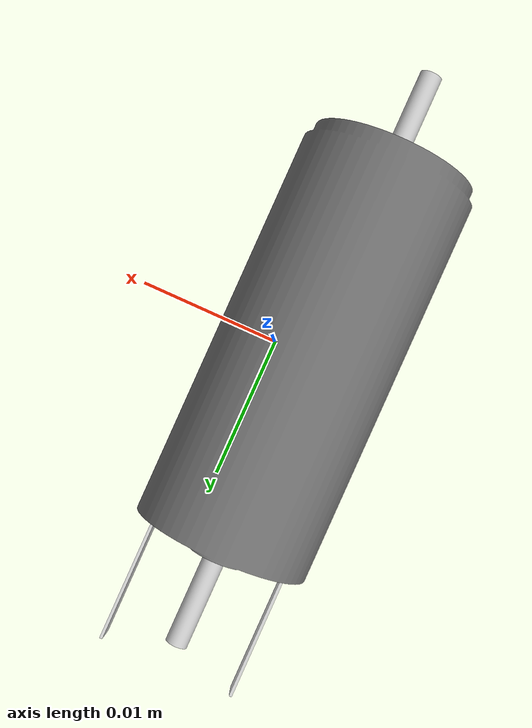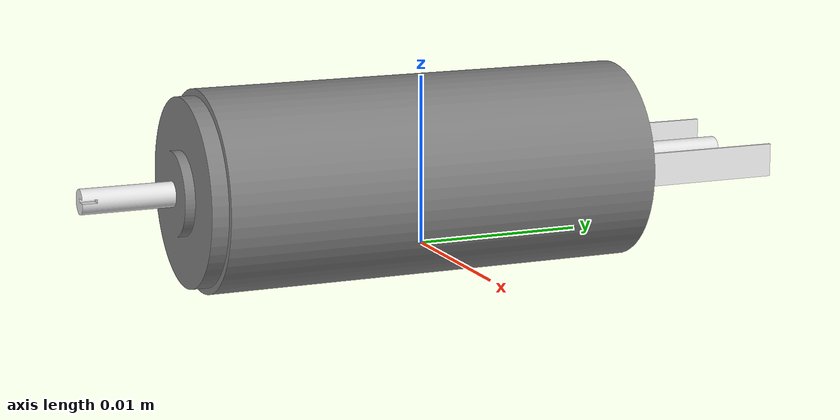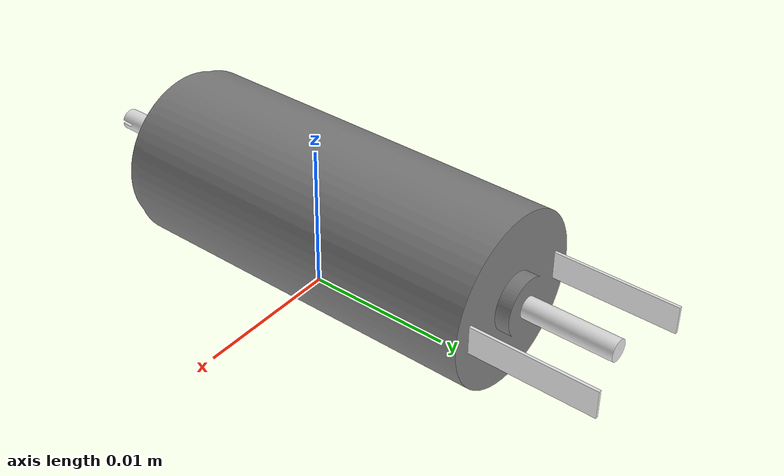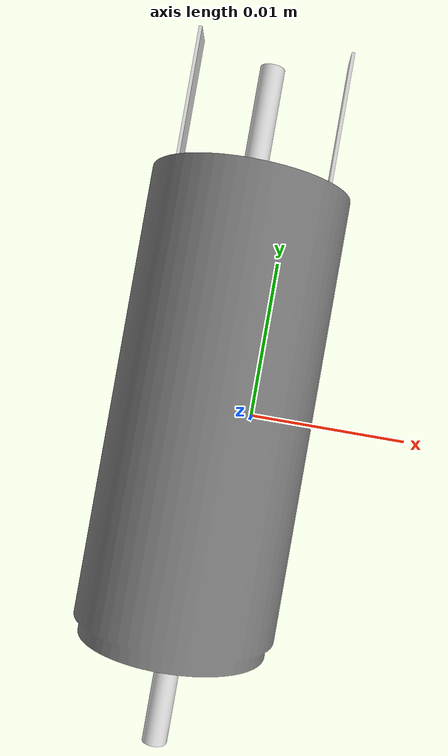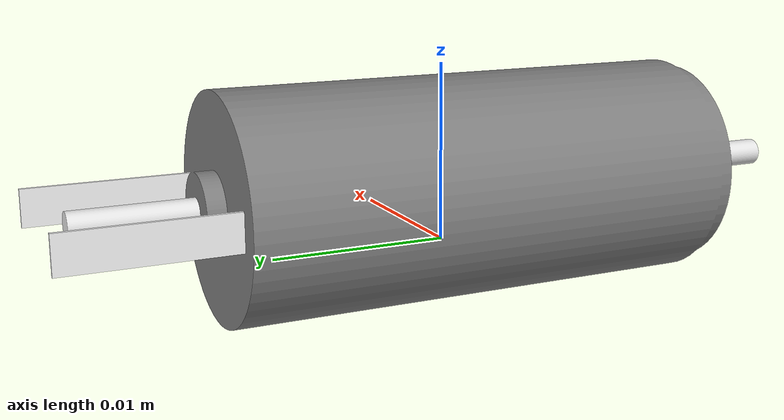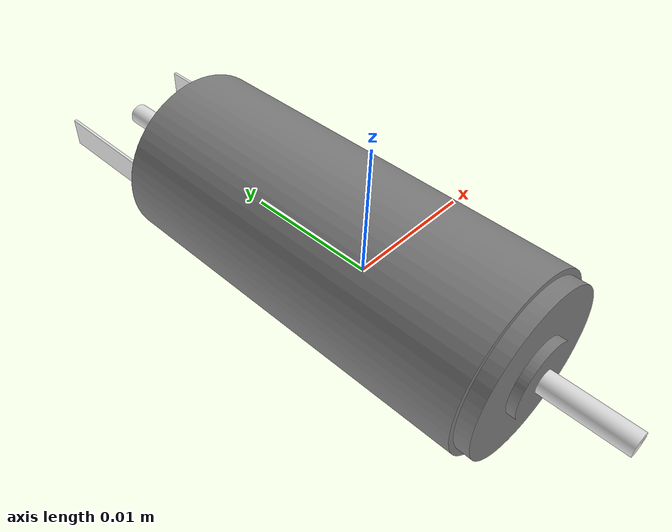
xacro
<!--URDF generated by ONSHAPE BY PTC INC, 1.218-->
<robot name="maxon_motor">
    <link name="body">
        <inertial>
            <mass value="3.13126e-06" />
            <origin xyz="-5.23054e-21 -0.000433745 4.96358e-19" rpy="0 -0 0" />
            <inertia ixx="2.28351e-10" ixy="0" ixz="0" iyy="5.57578e-11" iyz="0" izz="2.28351e-10" />
        </inertial>
        <visual>
            <origin xyz="0 0 0" rpy="0 -0 0" />
            <geometry>
                <mesh filename="package://embr_description/meshes/maxon_motor/meshes/Body.stl" scale="1 1 1" />
            </geometry>
            <material name="0.501961_0.501961_0.501961_0.000000_0.000000">
                <color rgba="0.501961 0.501961 0.501961 1" />
            </material>
        </visual>
    </link>
    <link name="root" />
    <link name="shaft">
        <inertial>
            <mass value="7.23207e-08" />
            <origin xyz="-7.1924e-07 0.0205367 -2.01903e-07" rpy="0 -0 0" />
            <inertia ixx="1.01063e-11" ixy="-1.04551e-15" ixz="0" iyy="2.03495e-14" iyz="0" izz="1.01063e-11" />
        </inertial>
        <visual>
            <origin xyz="0 0.0204 -9.093e-19" rpy="0 -0 0" />
            <geometry>
                <mesh filename="package://embr_description/meshes/maxon_motor/meshes/Shaft.stl" scale="1 1 1" />
            </geometry>
            <material name="0.901961_0.901961_0.901961_0.000000_0.000000">
                <color rgba="0.901961 0.901961 0.901961 1" />
            </material>
        </visual>
    </link>
    <link name="tab_1">
        <inertial>
            <mass value="3.48e-09" />
            <origin xyz="0.0046 0.00435 3.18908e-19" rpy="0 -0 0" />
            <inertia ixx="2.31101e-14" ixy="0" ixz="0" iyy="1.1716e-15" iyz="0" izz="2.19617e-14" />
        </inertial>
        <visual>
            <origin xyz="8.67362e-19 -0.0133 3.18908e-19" rpy="0 -0 0" />
            <geometry>
                <mesh filename="package://embr_description/meshes/maxon_motor/meshes/Tab_1.stl" scale="1 1 1" />
            </geometry>
            <material name="0.917647_0.917647_0.917647_0.000000_0.000000">
                <color rgba="0.917647 0.917647 0.917647 1" />
            </material>
        </visual>
    </link>
    <link name="tab_2">
        <inertial>
            <mass value="3.48e-09" />
            <origin xyz="-0.0046 0.00435 3.08814e-19" rpy="0 -0 0" />
            <inertia ixx="2.31101e-14" ixy="0" ixz="0" iyy="1.1716e-15" iyz="0" izz="2.19617e-14" />
        </inertial>
        <visual>
            <origin xyz="-8.67362e-19 -0.0133 3.08814e-19" rpy="0 -0 0" />
            <geometry>
                <mesh filename="package://embr_description/meshes/maxon_motor/meshes/Tab_2.stl" scale="1 1 1" />
            </geometry>
            <material name="0.917647_0.917647_0.917647_0.000000_0.000000">
                <color rgba="0.917647 0.917647 0.917647 1" />
            </material>
        </visual>
    </link>
    <joint name="fastened_1" type="fixed">
        <origin xyz="0 0.0133 4.33681e-19" rpy="0 -0 0" />
        <axis xyz="-0 -1 -0" />
        <parent link="body" />
        <child link="tab_1" />
    </joint>
    <joint name="fastened_2" type="fixed">
        <origin xyz="0 0.0133 4.33681e-19" rpy="0 -0 0" />
        <axis xyz="-0 -1 -0" />
        <parent link="body" />
        <child link="tab_2" />
    </joint>
    <joint name="fixed_node_to_root_joint" type="fixed">
        <origin xyz="-0.00231638 0.000321054 0.00368762" rpy="0 -0 0" />
        <axis xyz="0 0 1" />
        <parent link="root" />
        <child link="body" />
    </joint>
    <joint name="shaft" type="continuous">
        <origin xyz="-1.30104e-18 -0.0204 8.67362e-19" rpy="0 -0 0" />
        <axis xyz="0 -1 0" />
        <parent link="body" />
        <child link="shaft" />
    </joint>
</robot>
